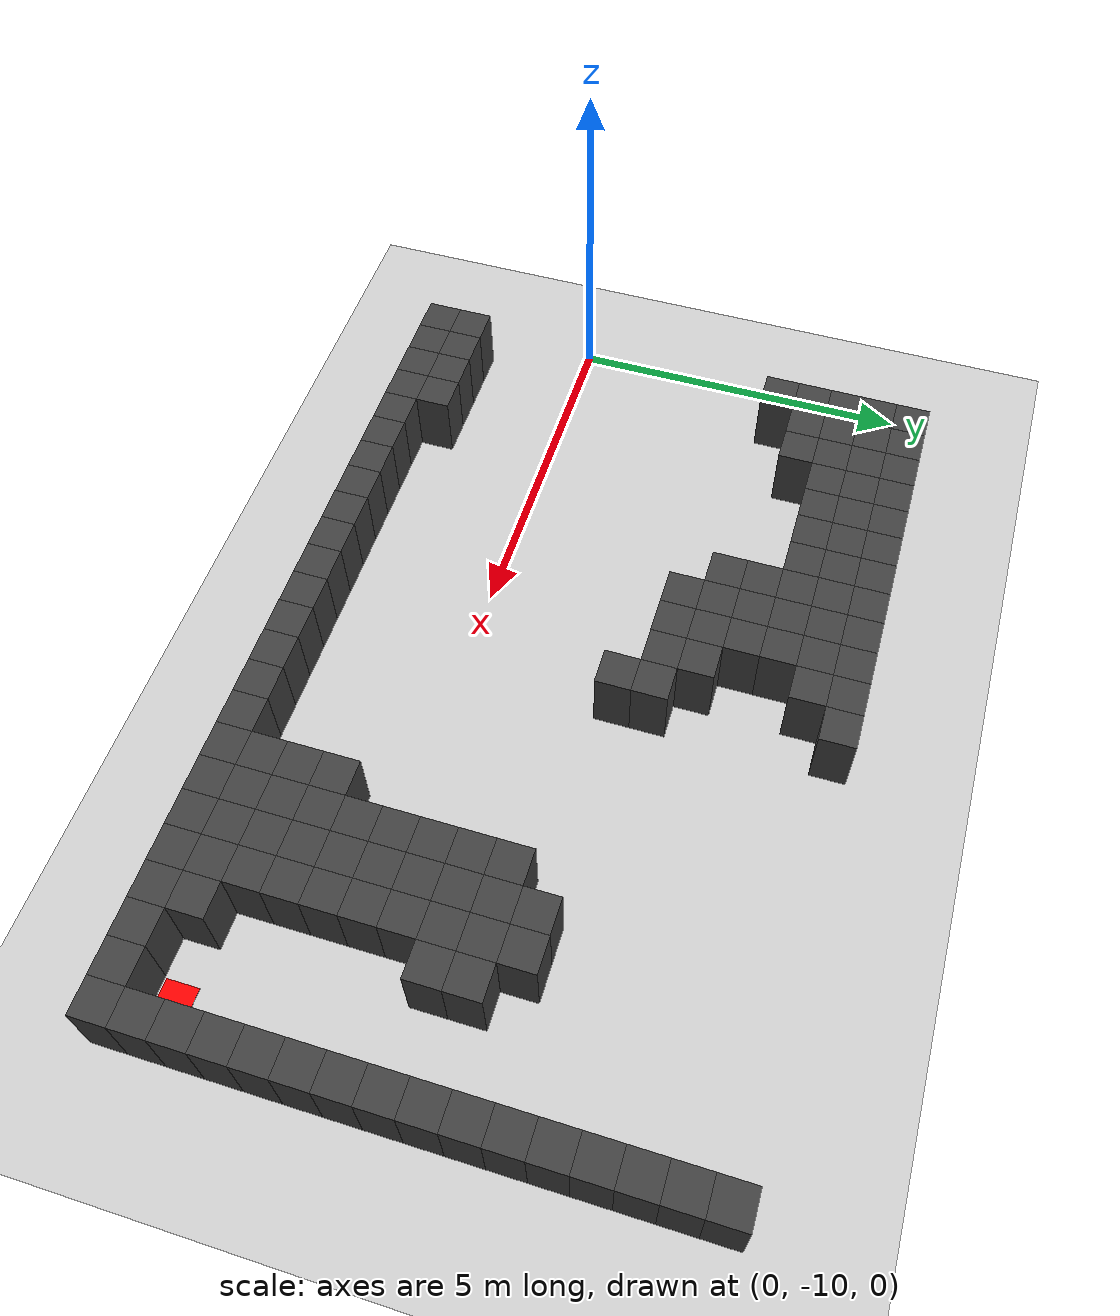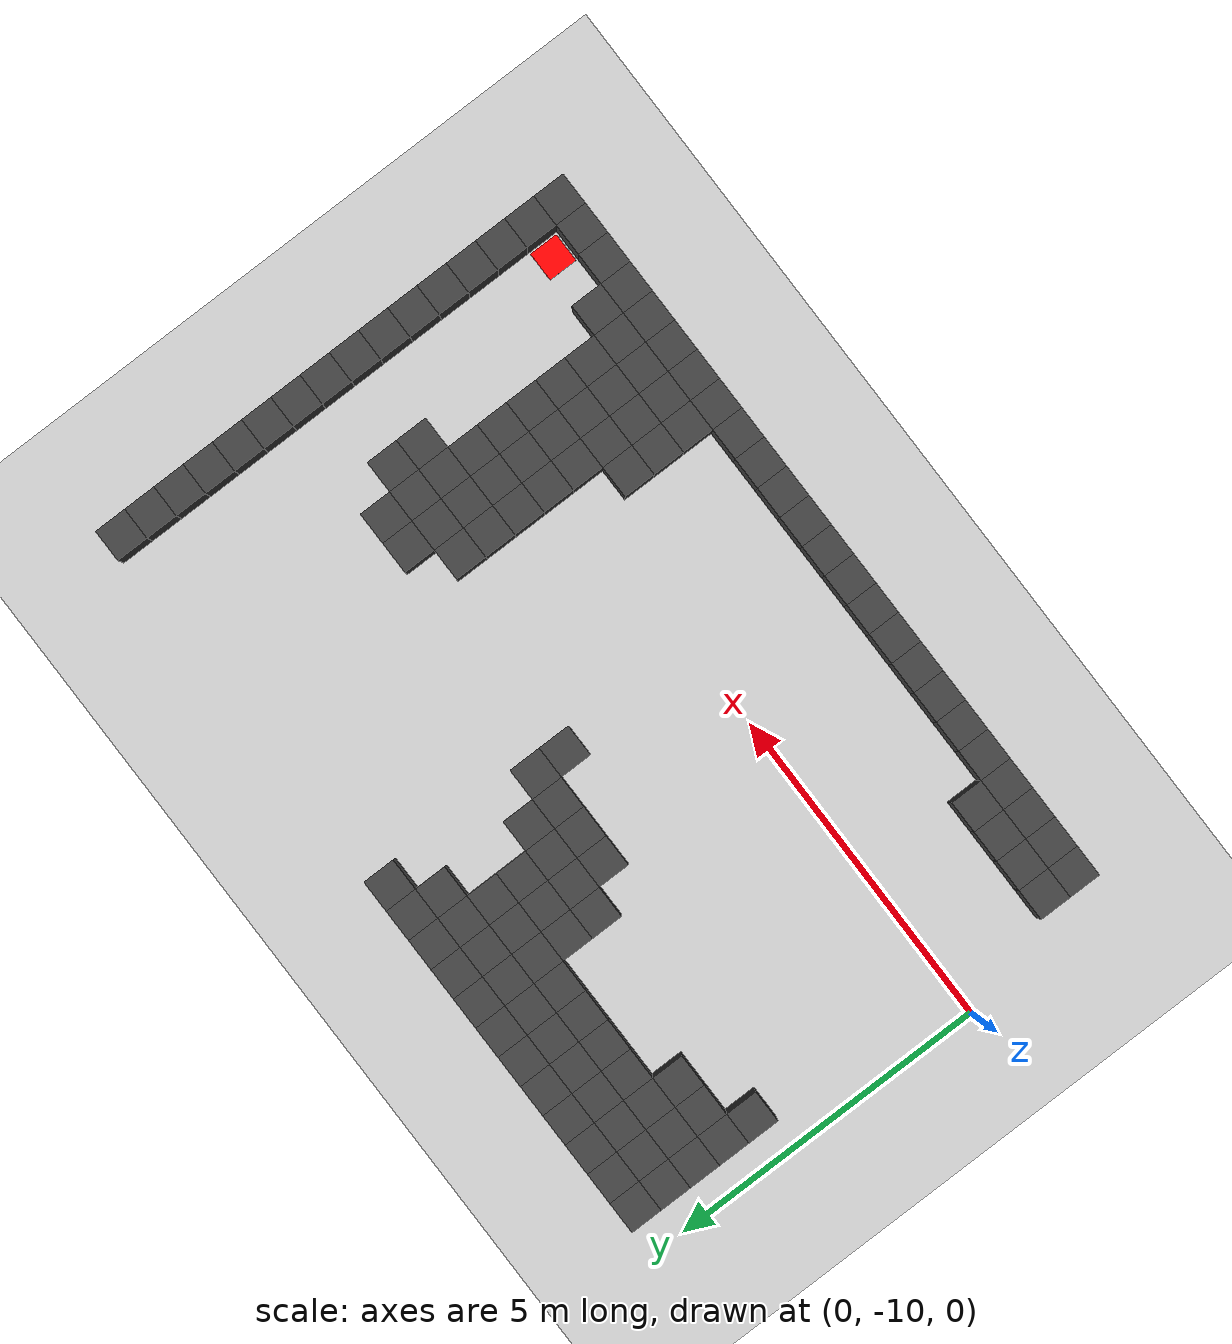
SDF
<sdf version="1.7">
 <world name="map_9687">
  <model name="ground_plane">
   <static>true</static>
   <link name="link">
    <collision name="collision">
     <geometry><plane><normal>0 0 1</normal><size>200 200</size></plane></geometry>
    </collision>
    <visual name="visual">
     <geometry><plane><normal>0 0 1</normal><size>200 200</size></plane></geometry>
     <material><ambient>0.8 0.8 0.8 1</ambient><diffuse>0.8 0.8 0.8 1</diffuse></material>
    </visual>
   </link>
  </model>
  <model name="maze_environment">
   <static>true</static>
   <link name="wall_696">
    <pose>0.750 -4.750 0.500 0 0 0</pose>
    <collision name="col"><geometry><box><size>0.5 0.5 1.0</size></box></geometry></collision>
    <visual name="vis">
     <geometry><box><size>0.5 0.5 1.0</size></box></geometry>
     <material><ambient>0.15 0.15 0.15 1</ambient><diffuse>0.25 0.25 0.25 1</diffuse></material>
    </visual>
   </link>
   <link name="wall_697">
    <pose>1.250 -4.750 0.500 0 0 0</pose>
    <collision name="col"><geometry><box><size>0.5 0.5 1.0</size></box></geometry></collision>
    <visual name="vis">
     <geometry><box><size>0.5 0.5 1.0</size></box></geometry>
     <material><ambient>0.15 0.15 0.15 1</ambient><diffuse>0.25 0.25 0.25 1</diffuse></material>
    </visual>
   </link>
   <link name="wall_698">
    <pose>1.750 -4.750 0.500 0 0 0</pose>
    <collision name="col"><geometry><box><size>0.5 0.5 1.0</size></box></geometry></collision>
    <visual name="vis">
     <geometry><box><size>0.5 0.5 1.0</size></box></geometry>
     <material><ambient>0.15 0.15 0.15 1</ambient><diffuse>0.25 0.25 0.25 1</diffuse></material>
    </visual>
   </link>
   <link name="wall_699">
    <pose>2.250 -4.750 0.500 0 0 0</pose>
    <collision name="col"><geometry><box><size>0.5 0.5 1.0</size></box></geometry></collision>
    <visual name="vis">
     <geometry><box><size>0.5 0.5 1.0</size></box></geometry>
     <material><ambient>0.15 0.15 0.15 1</ambient><diffuse>0.25 0.25 0.25 1</diffuse></material>
    </visual>
   </link>
   <link name="wall_700">
    <pose>2.750 -4.750 0.500 0 0 0</pose>
    <collision name="col"><geometry><box><size>0.5 0.5 1.0</size></box></geometry></collision>
    <visual name="vis">
     <geometry><box><size>0.5 0.5 1.0</size></box></geometry>
     <material><ambient>0.15 0.15 0.15 1</ambient><diffuse>0.25 0.25 0.25 1</diffuse></material>
    </visual>
   </link>
   <link name="wall_701">
    <pose>3.250 -4.750 0.500 0 0 0</pose>
    <collision name="col"><geometry><box><size>0.5 0.5 1.0</size></box></geometry></collision>
    <visual name="vis">
     <geometry><box><size>0.5 0.5 1.0</size></box></geometry>
     <material><ambient>0.15 0.15 0.15 1</ambient><diffuse>0.25 0.25 0.25 1</diffuse></material>
    </visual>
   </link>
   <link name="wall_702">
    <pose>3.750 -4.750 0.500 0 0 0</pose>
    <collision name="col"><geometry><box><size>0.5 0.5 1.0</size></box></geometry></collision>
    <visual name="vis">
     <geometry><box><size>0.5 0.5 1.0</size></box></geometry>
     <material><ambient>0.15 0.15 0.15 1</ambient><diffuse>0.25 0.25 0.25 1</diffuse></material>
    </visual>
   </link>
   <link name="wall_703">
    <pose>4.250 -4.750 0.500 0 0 0</pose>
    <collision name="col"><geometry><box><size>0.5 0.5 1.0</size></box></geometry></collision>
    <visual name="vis">
     <geometry><box><size>0.5 0.5 1.0</size></box></geometry>
     <material><ambient>0.15 0.15 0.15 1</ambient><diffuse>0.25 0.25 0.25 1</diffuse></material>
    </visual>
   </link>
   <link name="wall_704">
    <pose>4.750 -4.750 0.500 0 0 0</pose>
    <collision name="col"><geometry><box><size>0.5 0.5 1.0</size></box></geometry></collision>
    <visual name="vis">
     <geometry><box><size>0.5 0.5 1.0</size></box></geometry>
     <material><ambient>0.15 0.15 0.15 1</ambient><diffuse>0.25 0.25 0.25 1</diffuse></material>
    </visual>
   </link>
   <link name="wall_705">
    <pose>5.250 -4.750 0.500 0 0 0</pose>
    <collision name="col"><geometry><box><size>0.5 0.5 1.0</size></box></geometry></collision>
    <visual name="vis">
     <geometry><box><size>0.5 0.5 1.0</size></box></geometry>
     <material><ambient>0.15 0.15 0.15 1</ambient><diffuse>0.25 0.25 0.25 1</diffuse></material>
    </visual>
   </link>
   <link name="wall_706">
    <pose>5.750 -4.750 0.500 0 0 0</pose>
    <collision name="col"><geometry><box><size>0.5 0.5 1.0</size></box></geometry></collision>
    <visual name="vis">
     <geometry><box><size>0.5 0.5 1.0</size></box></geometry>
     <material><ambient>0.15 0.15 0.15 1</ambient><diffuse>0.25 0.25 0.25 1</diffuse></material>
    </visual>
   </link>
   <link name="wall_707">
    <pose>6.250 -4.750 0.500 0 0 0</pose>
    <collision name="col"><geometry><box><size>0.5 0.5 1.0</size></box></geometry></collision>
    <visual name="vis">
     <geometry><box><size>0.5 0.5 1.0</size></box></geometry>
     <material><ambient>0.15 0.15 0.15 1</ambient><diffuse>0.25 0.25 0.25 1</diffuse></material>
    </visual>
   </link>
   <link name="wall_708">
    <pose>12.250 -4.750 0.500 0 0 0</pose>
    <collision name="col"><geometry><box><size>0.5 0.5 1.0</size></box></geometry></collision>
    <visual name="vis">
     <geometry><box><size>0.5 0.5 1.0</size></box></geometry>
     <material><ambient>0.15 0.15 0.15 1</ambient><diffuse>0.25 0.25 0.25 1</diffuse></material>
    </visual>
   </link>
   <link name="wall_718">
    <pose>0.750 -5.250 0.500 0 0 0</pose>
    <collision name="col"><geometry><box><size>0.5 0.5 1.0</size></box></geometry></collision>
    <visual name="vis">
     <geometry><box><size>0.5 0.5 1.0</size></box></geometry>
     <material><ambient>0.15 0.15 0.15 1</ambient><diffuse>0.25 0.25 0.25 1</diffuse></material>
    </visual>
   </link>
   <link name="wall_719">
    <pose>1.250 -5.250 0.500 0 0 0</pose>
    <collision name="col"><geometry><box><size>0.5 0.5 1.0</size></box></geometry></collision>
    <visual name="vis">
     <geometry><box><size>0.5 0.5 1.0</size></box></geometry>
     <material><ambient>0.15 0.15 0.15 1</ambient><diffuse>0.25 0.25 0.25 1</diffuse></material>
    </visual>
   </link>
   <link name="wall_720">
    <pose>1.750 -5.250 0.500 0 0 0</pose>
    <collision name="col"><geometry><box><size>0.5 0.5 1.0</size></box></geometry></collision>
    <visual name="vis">
     <geometry><box><size>0.5 0.5 1.0</size></box></geometry>
     <material><ambient>0.15 0.15 0.15 1</ambient><diffuse>0.25 0.25 0.25 1</diffuse></material>
    </visual>
   </link>
   <link name="wall_721">
    <pose>2.250 -5.250 0.500 0 0 0</pose>
    <collision name="col"><geometry><box><size>0.5 0.5 1.0</size></box></geometry></collision>
    <visual name="vis">
     <geometry><box><size>0.5 0.5 1.0</size></box></geometry>
     <material><ambient>0.15 0.15 0.15 1</ambient><diffuse>0.25 0.25 0.25 1</diffuse></material>
    </visual>
   </link>
   <link name="wall_722">
    <pose>2.750 -5.250 0.500 0 0 0</pose>
    <collision name="col"><geometry><box><size>0.5 0.5 1.0</size></box></geometry></collision>
    <visual name="vis">
     <geometry><box><size>0.5 0.5 1.0</size></box></geometry>
     <material><ambient>0.15 0.15 0.15 1</ambient><diffuse>0.25 0.25 0.25 1</diffuse></material>
    </visual>
   </link>
   <link name="wall_723">
    <pose>3.250 -5.250 0.500 0 0 0</pose>
    <collision name="col"><geometry><box><size>0.5 0.5 1.0</size></box></geometry></collision>
    <visual name="vis">
     <geometry><box><size>0.5 0.5 1.0</size></box></geometry>
     <material><ambient>0.15 0.15 0.15 1</ambient><diffuse>0.25 0.25 0.25 1</diffuse></material>
    </visual>
   </link>
   <link name="wall_724">
    <pose>3.750 -5.250 0.500 0 0 0</pose>
    <collision name="col"><geometry><box><size>0.5 0.5 1.0</size></box></geometry></collision>
    <visual name="vis">
     <geometry><box><size>0.5 0.5 1.0</size></box></geometry>
     <material><ambient>0.15 0.15 0.15 1</ambient><diffuse>0.25 0.25 0.25 1</diffuse></material>
    </visual>
   </link>
   <link name="wall_725">
    <pose>4.250 -5.250 0.500 0 0 0</pose>
    <collision name="col"><geometry><box><size>0.5 0.5 1.0</size></box></geometry></collision>
    <visual name="vis">
     <geometry><box><size>0.5 0.5 1.0</size></box></geometry>
     <material><ambient>0.15 0.15 0.15 1</ambient><diffuse>0.25 0.25 0.25 1</diffuse></material>
    </visual>
   </link>
   <link name="wall_726">
    <pose>4.750 -5.250 0.500 0 0 0</pose>
    <collision name="col"><geometry><box><size>0.5 0.5 1.0</size></box></geometry></collision>
    <visual name="vis">
     <geometry><box><size>0.5 0.5 1.0</size></box></geometry>
     <material><ambient>0.15 0.15 0.15 1</ambient><diffuse>0.25 0.25 0.25 1</diffuse></material>
    </visual>
   </link>
   <link name="wall_727">
    <pose>5.250 -5.250 0.500 0 0 0</pose>
    <collision name="col"><geometry><box><size>0.5 0.5 1.0</size></box></geometry></collision>
    <visual name="vis">
     <geometry><box><size>0.5 0.5 1.0</size></box></geometry>
     <material><ambient>0.15 0.15 0.15 1</ambient><diffuse>0.25 0.25 0.25 1</diffuse></material>
    </visual>
   </link>
   <link name="wall_728">
    <pose>5.750 -5.250 0.500 0 0 0</pose>
    <collision name="col"><geometry><box><size>0.5 0.5 1.0</size></box></geometry></collision>
    <visual name="vis">
     <geometry><box><size>0.5 0.5 1.0</size></box></geometry>
     <material><ambient>0.15 0.15 0.15 1</ambient><diffuse>0.25 0.25 0.25 1</diffuse></material>
    </visual>
   </link>
   <link name="wall_729">
    <pose>12.250 -5.250 0.500 0 0 0</pose>
    <collision name="col"><geometry><box><size>0.5 0.5 1.0</size></box></geometry></collision>
    <visual name="vis">
     <geometry><box><size>0.5 0.5 1.0</size></box></geometry>
     <material><ambient>0.15 0.15 0.15 1</ambient><diffuse>0.25 0.25 0.25 1</diffuse></material>
    </visual>
   </link>
   <link name="wall_737">
    <pose>0.750 -5.750 0.500 0 0 0</pose>
    <collision name="col"><geometry><box><size>0.5 0.5 1.0</size></box></geometry></collision>
    <visual name="vis">
     <geometry><box><size>0.5 0.5 1.0</size></box></geometry>
     <material><ambient>0.15 0.15 0.15 1</ambient><diffuse>0.25 0.25 0.25 1</diffuse></material>
    </visual>
   </link>
   <link name="wall_738">
    <pose>1.250 -5.750 0.500 0 0 0</pose>
    <collision name="col"><geometry><box><size>0.5 0.5 1.0</size></box></geometry></collision>
    <visual name="vis">
     <geometry><box><size>0.5 0.5 1.0</size></box></geometry>
     <material><ambient>0.15 0.15 0.15 1</ambient><diffuse>0.25 0.25 0.25 1</diffuse></material>
    </visual>
   </link>
   <link name="wall_739">
    <pose>1.750 -5.750 0.500 0 0 0</pose>
    <collision name="col"><geometry><box><size>0.5 0.5 1.0</size></box></geometry></collision>
    <visual name="vis">
     <geometry><box><size>0.5 0.5 1.0</size></box></geometry>
     <material><ambient>0.15 0.15 0.15 1</ambient><diffuse>0.25 0.25 0.25 1</diffuse></material>
    </visual>
   </link>
   <link name="wall_740">
    <pose>2.250 -5.750 0.500 0 0 0</pose>
    <collision name="col"><geometry><box><size>0.5 0.5 1.0</size></box></geometry></collision>
    <visual name="vis">
     <geometry><box><size>0.5 0.5 1.0</size></box></geometry>
     <material><ambient>0.15 0.15 0.15 1</ambient><diffuse>0.25 0.25 0.25 1</diffuse></material>
    </visual>
   </link>
   <link name="wall_741">
    <pose>2.750 -5.750 0.500 0 0 0</pose>
    <collision name="col"><geometry><box><size>0.5 0.5 1.0</size></box></geometry></collision>
    <visual name="vis">
     <geometry><box><size>0.5 0.5 1.0</size></box></geometry>
     <material><ambient>0.15 0.15 0.15 1</ambient><diffuse>0.25 0.25 0.25 1</diffuse></material>
    </visual>
   </link>
   <link name="wall_742">
    <pose>3.250 -5.750 0.500 0 0 0</pose>
    <collision name="col"><geometry><box><size>0.5 0.5 1.0</size></box></geometry></collision>
    <visual name="vis">
     <geometry><box><size>0.5 0.5 1.0</size></box></geometry>
     <material><ambient>0.15 0.15 0.15 1</ambient><diffuse>0.25 0.25 0.25 1</diffuse></material>
    </visual>
   </link>
   <link name="wall_743">
    <pose>3.750 -5.750 0.500 0 0 0</pose>
    <collision name="col"><geometry><box><size>0.5 0.5 1.0</size></box></geometry></collision>
    <visual name="vis">
     <geometry><box><size>0.5 0.5 1.0</size></box></geometry>
     <material><ambient>0.15 0.15 0.15 1</ambient><diffuse>0.25 0.25 0.25 1</diffuse></material>
    </visual>
   </link>
   <link name="wall_744">
    <pose>4.250 -5.750 0.500 0 0 0</pose>
    <collision name="col"><geometry><box><size>0.5 0.5 1.0</size></box></geometry></collision>
    <visual name="vis">
     <geometry><box><size>0.5 0.5 1.0</size></box></geometry>
     <material><ambient>0.15 0.15 0.15 1</ambient><diffuse>0.25 0.25 0.25 1</diffuse></material>
    </visual>
   </link>
   <link name="wall_745">
    <pose>4.750 -5.750 0.500 0 0 0</pose>
    <collision name="col"><geometry><box><size>0.5 0.5 1.0</size></box></geometry></collision>
    <visual name="vis">
     <geometry><box><size>0.5 0.5 1.0</size></box></geometry>
     <material><ambient>0.15 0.15 0.15 1</ambient><diffuse>0.25 0.25 0.25 1</diffuse></material>
    </visual>
   </link>
   <link name="wall_746">
    <pose>5.250 -5.750 0.500 0 0 0</pose>
    <collision name="col"><geometry><box><size>0.5 0.5 1.0</size></box></geometry></collision>
    <visual name="vis">
     <geometry><box><size>0.5 0.5 1.0</size></box></geometry>
     <material><ambient>0.15 0.15 0.15 1</ambient><diffuse>0.25 0.25 0.25 1</diffuse></material>
    </visual>
   </link>
   <link name="wall_747">
    <pose>12.250 -5.750 0.500 0 0 0</pose>
    <collision name="col"><geometry><box><size>0.5 0.5 1.0</size></box></geometry></collision>
    <visual name="vis">
     <geometry><box><size>0.5 0.5 1.0</size></box></geometry>
     <material><ambient>0.15 0.15 0.15 1</ambient><diffuse>0.25 0.25 0.25 1</diffuse></material>
    </visual>
   </link>
   <link name="wall_754">
    <pose>0.750 -6.250 0.500 0 0 0</pose>
    <collision name="col"><geometry><box><size>0.5 0.5 1.0</size></box></geometry></collision>
    <visual name="vis">
     <geometry><box><size>0.5 0.5 1.0</size></box></geometry>
     <material><ambient>0.15 0.15 0.15 1</ambient><diffuse>0.25 0.25 0.25 1</diffuse></material>
    </visual>
   </link>
   <link name="wall_755">
    <pose>1.250 -6.250 0.500 0 0 0</pose>
    <collision name="col"><geometry><box><size>0.5 0.5 1.0</size></box></geometry></collision>
    <visual name="vis">
     <geometry><box><size>0.5 0.5 1.0</size></box></geometry>
     <material><ambient>0.15 0.15 0.15 1</ambient><diffuse>0.25 0.25 0.25 1</diffuse></material>
    </visual>
   </link>
   <link name="wall_756">
    <pose>1.750 -6.250 0.500 0 0 0</pose>
    <collision name="col"><geometry><box><size>0.5 0.5 1.0</size></box></geometry></collision>
    <visual name="vis">
     <geometry><box><size>0.5 0.5 1.0</size></box></geometry>
     <material><ambient>0.15 0.15 0.15 1</ambient><diffuse>0.25 0.25 0.25 1</diffuse></material>
    </visual>
   </link>
   <link name="wall_757">
    <pose>4.250 -6.250 0.500 0 0 0</pose>
    <collision name="col"><geometry><box><size>0.5 0.5 1.0</size></box></geometry></collision>
    <visual name="vis">
     <geometry><box><size>0.5 0.5 1.0</size></box></geometry>
     <material><ambient>0.15 0.15 0.15 1</ambient><diffuse>0.25 0.25 0.25 1</diffuse></material>
    </visual>
   </link>
   <link name="wall_758">
    <pose>4.750 -6.250 0.500 0 0 0</pose>
    <collision name="col"><geometry><box><size>0.5 0.5 1.0</size></box></geometry></collision>
    <visual name="vis">
     <geometry><box><size>0.5 0.5 1.0</size></box></geometry>
     <material><ambient>0.15 0.15 0.15 1</ambient><diffuse>0.25 0.25 0.25 1</diffuse></material>
    </visual>
   </link>
   <link name="wall_759">
    <pose>5.250 -6.250 0.500 0 0 0</pose>
    <collision name="col"><geometry><box><size>0.5 0.5 1.0</size></box></geometry></collision>
    <visual name="vis">
     <geometry><box><size>0.5 0.5 1.0</size></box></geometry>
     <material><ambient>0.15 0.15 0.15 1</ambient><diffuse>0.25 0.25 0.25 1</diffuse></material>
    </visual>
   </link>
   <link name="wall_760">
    <pose>12.250 -6.250 0.500 0 0 0</pose>
    <collision name="col"><geometry><box><size>0.5 0.5 1.0</size></box></geometry></collision>
    <visual name="vis">
     <geometry><box><size>0.5 0.5 1.0</size></box></geometry>
     <material><ambient>0.15 0.15 0.15 1</ambient><diffuse>0.25 0.25 0.25 1</diffuse></material>
    </visual>
   </link>
   <link name="wall_769">
    <pose>0.750 -6.750 0.500 0 0 0</pose>
    <collision name="col"><geometry><box><size>0.5 0.5 1.0</size></box></geometry></collision>
    <visual name="vis">
     <geometry><box><size>0.5 0.5 1.0</size></box></geometry>
     <material><ambient>0.15 0.15 0.15 1</ambient><diffuse>0.25 0.25 0.25 1</diffuse></material>
    </visual>
   </link>
   <link name="wall_770">
    <pose>4.250 -6.750 0.500 0 0 0</pose>
    <collision name="col"><geometry><box><size>0.5 0.5 1.0</size></box></geometry></collision>
    <visual name="vis">
     <geometry><box><size>0.5 0.5 1.0</size></box></geometry>
     <material><ambient>0.15 0.15 0.15 1</ambient><diffuse>0.25 0.25 0.25 1</diffuse></material>
    </visual>
   </link>
   <link name="wall_771">
    <pose>4.750 -6.750 0.500 0 0 0</pose>
    <collision name="col"><geometry><box><size>0.5 0.5 1.0</size></box></geometry></collision>
    <visual name="vis">
     <geometry><box><size>0.5 0.5 1.0</size></box></geometry>
     <material><ambient>0.15 0.15 0.15 1</ambient><diffuse>0.25 0.25 0.25 1</diffuse></material>
    </visual>
   </link>
   <link name="wall_772">
    <pose>5.250 -6.750 0.500 0 0 0</pose>
    <collision name="col"><geometry><box><size>0.5 0.5 1.0</size></box></geometry></collision>
    <visual name="vis">
     <geometry><box><size>0.5 0.5 1.0</size></box></geometry>
     <material><ambient>0.15 0.15 0.15 1</ambient><diffuse>0.25 0.25 0.25 1</diffuse></material>
    </visual>
   </link>
   <link name="wall_773">
    <pose>5.750 -6.750 0.500 0 0 0</pose>
    <collision name="col"><geometry><box><size>0.5 0.5 1.0</size></box></geometry></collision>
    <visual name="vis">
     <geometry><box><size>0.5 0.5 1.0</size></box></geometry>
     <material><ambient>0.15 0.15 0.15 1</ambient><diffuse>0.25 0.25 0.25 1</diffuse></material>
    </visual>
   </link>
   <link name="wall_774">
    <pose>12.250 -6.750 0.500 0 0 0</pose>
    <collision name="col"><geometry><box><size>0.5 0.5 1.0</size></box></geometry></collision>
    <visual name="vis">
     <geometry><box><size>0.5 0.5 1.0</size></box></geometry>
     <material><ambient>0.15 0.15 0.15 1</ambient><diffuse>0.25 0.25 0.25 1</diffuse></material>
    </visual>
   </link>
   <link name="wall_785">
    <pose>4.750 -7.250 0.500 0 0 0</pose>
    <collision name="col"><geometry><box><size>0.5 0.5 1.0</size></box></geometry></collision>
    <visual name="vis">
     <geometry><box><size>0.5 0.5 1.0</size></box></geometry>
     <material><ambient>0.15 0.15 0.15 1</ambient><diffuse>0.25 0.25 0.25 1</diffuse></material>
    </visual>
   </link>
   <link name="wall_786">
    <pose>5.250 -7.250 0.500 0 0 0</pose>
    <collision name="col"><geometry><box><size>0.5 0.5 1.0</size></box></geometry></collision>
    <visual name="vis">
     <geometry><box><size>0.5 0.5 1.0</size></box></geometry>
     <material><ambient>0.15 0.15 0.15 1</ambient><diffuse>0.25 0.25 0.25 1</diffuse></material>
    </visual>
   </link>
   <link name="wall_787">
    <pose>5.750 -7.250 0.500 0 0 0</pose>
    <collision name="col"><geometry><box><size>0.5 0.5 1.0</size></box></geometry></collision>
    <visual name="vis">
     <geometry><box><size>0.5 0.5 1.0</size></box></geometry>
     <material><ambient>0.15 0.15 0.15 1</ambient><diffuse>0.25 0.25 0.25 1</diffuse></material>
    </visual>
   </link>
   <link name="wall_788">
    <pose>6.250 -7.250 0.500 0 0 0</pose>
    <collision name="col"><geometry><box><size>0.5 0.5 1.0</size></box></geometry></collision>
    <visual name="vis">
     <geometry><box><size>0.5 0.5 1.0</size></box></geometry>
     <material><ambient>0.15 0.15 0.15 1</ambient><diffuse>0.25 0.25 0.25 1</diffuse></material>
    </visual>
   </link>
   <link name="wall_789">
    <pose>12.250 -7.250 0.500 0 0 0</pose>
    <collision name="col"><geometry><box><size>0.5 0.5 1.0</size></box></geometry></collision>
    <visual name="vis">
     <geometry><box><size>0.5 0.5 1.0</size></box></geometry>
     <material><ambient>0.15 0.15 0.15 1</ambient><diffuse>0.25 0.25 0.25 1</diffuse></material>
    </visual>
   </link>
   <link name="wall_803">
    <pose>6.250 -7.750 0.500 0 0 0</pose>
    <collision name="col"><geometry><box><size>0.5 0.5 1.0</size></box></geometry></collision>
    <visual name="vis">
     <geometry><box><size>0.5 0.5 1.0</size></box></geometry>
     <material><ambient>0.15 0.15 0.15 1</ambient><diffuse>0.25 0.25 0.25 1</diffuse></material>
    </visual>
   </link>
   <link name="wall_804">
    <pose>9.750 -7.750 0.500 0 0 0</pose>
    <collision name="col"><geometry><box><size>0.5 0.5 1.0</size></box></geometry></collision>
    <visual name="vis">
     <geometry><box><size>0.5 0.5 1.0</size></box></geometry>
     <material><ambient>0.15 0.15 0.15 1</ambient><diffuse>0.25 0.25 0.25 1</diffuse></material>
    </visual>
   </link>
   <link name="wall_805">
    <pose>10.250 -7.750 0.500 0 0 0</pose>
    <collision name="col"><geometry><box><size>0.5 0.5 1.0</size></box></geometry></collision>
    <visual name="vis">
     <geometry><box><size>0.5 0.5 1.0</size></box></geometry>
     <material><ambient>0.15 0.15 0.15 1</ambient><diffuse>0.25 0.25 0.25 1</diffuse></material>
    </visual>
   </link>
   <link name="wall_806">
    <pose>12.250 -7.750 0.500 0 0 0</pose>
    <collision name="col"><geometry><box><size>0.5 0.5 1.0</size></box></geometry></collision>
    <visual name="vis">
     <geometry><box><size>0.5 0.5 1.0</size></box></geometry>
     <material><ambient>0.15 0.15 0.15 1</ambient><diffuse>0.25 0.25 0.25 1</diffuse></material>
    </visual>
   </link>
   <link name="wall_821">
    <pose>9.250 -8.250 0.500 0 0 0</pose>
    <collision name="col"><geometry><box><size>0.5 0.5 1.0</size></box></geometry></collision>
    <visual name="vis">
     <geometry><box><size>0.5 0.5 1.0</size></box></geometry>
     <material><ambient>0.15 0.15 0.15 1</ambient><diffuse>0.25 0.25 0.25 1</diffuse></material>
    </visual>
   </link>
   <link name="wall_822">
    <pose>9.750 -8.250 0.500 0 0 0</pose>
    <collision name="col"><geometry><box><size>0.5 0.5 1.0</size></box></geometry></collision>
    <visual name="vis">
     <geometry><box><size>0.5 0.5 1.0</size></box></geometry>
     <material><ambient>0.15 0.15 0.15 1</ambient><diffuse>0.25 0.25 0.25 1</diffuse></material>
    </visual>
   </link>
   <link name="wall_823">
    <pose>10.250 -8.250 0.500 0 0 0</pose>
    <collision name="col"><geometry><box><size>0.5 0.5 1.0</size></box></geometry></collision>
    <visual name="vis">
     <geometry><box><size>0.5 0.5 1.0</size></box></geometry>
     <material><ambient>0.15 0.15 0.15 1</ambient><diffuse>0.25 0.25 0.25 1</diffuse></material>
    </visual>
   </link>
   <link name="wall_824">
    <pose>10.750 -8.250 0.500 0 0 0</pose>
    <collision name="col"><geometry><box><size>0.5 0.5 1.0</size></box></geometry></collision>
    <visual name="vis">
     <geometry><box><size>0.5 0.5 1.0</size></box></geometry>
     <material><ambient>0.15 0.15 0.15 1</ambient><diffuse>0.25 0.25 0.25 1</diffuse></material>
    </visual>
   </link>
   <link name="wall_825">
    <pose>12.250 -8.250 0.500 0 0 0</pose>
    <collision name="col"><geometry><box><size>0.5 0.5 1.0</size></box></geometry></collision>
    <visual name="vis">
     <geometry><box><size>0.5 0.5 1.0</size></box></geometry>
     <material><ambient>0.15 0.15 0.15 1</ambient><diffuse>0.25 0.25 0.25 1</diffuse></material>
    </visual>
   </link>
   <link name="wall_839">
    <pose>9.250 -8.750 0.500 0 0 0</pose>
    <collision name="col"><geometry><box><size>0.5 0.5 1.0</size></box></geometry></collision>
    <visual name="vis">
     <geometry><box><size>0.5 0.5 1.0</size></box></geometry>
     <material><ambient>0.15 0.15 0.15 1</ambient><diffuse>0.25 0.25 0.25 1</diffuse></material>
    </visual>
   </link>
   <link name="wall_840">
    <pose>9.750 -8.750 0.500 0 0 0</pose>
    <collision name="col"><geometry><box><size>0.5 0.5 1.0</size></box></geometry></collision>
    <visual name="vis">
     <geometry><box><size>0.5 0.5 1.0</size></box></geometry>
     <material><ambient>0.15 0.15 0.15 1</ambient><diffuse>0.25 0.25 0.25 1</diffuse></material>
    </visual>
   </link>
   <link name="wall_841">
    <pose>10.250 -8.750 0.500 0 0 0</pose>
    <collision name="col"><geometry><box><size>0.5 0.5 1.0</size></box></geometry></collision>
    <visual name="vis">
     <geometry><box><size>0.5 0.5 1.0</size></box></geometry>
     <material><ambient>0.15 0.15 0.15 1</ambient><diffuse>0.25 0.25 0.25 1</diffuse></material>
    </visual>
   </link>
   <link name="wall_842">
    <pose>10.750 -8.750 0.500 0 0 0</pose>
    <collision name="col"><geometry><box><size>0.5 0.5 1.0</size></box></geometry></collision>
    <visual name="vis">
     <geometry><box><size>0.5 0.5 1.0</size></box></geometry>
     <material><ambient>0.15 0.15 0.15 1</ambient><diffuse>0.25 0.25 0.25 1</diffuse></material>
    </visual>
   </link>
   <link name="wall_843">
    <pose>12.250 -8.750 0.500 0 0 0</pose>
    <collision name="col"><geometry><box><size>0.5 0.5 1.0</size></box></geometry></collision>
    <visual name="vis">
     <geometry><box><size>0.5 0.5 1.0</size></box></geometry>
     <material><ambient>0.15 0.15 0.15 1</ambient><diffuse>0.25 0.25 0.25 1</diffuse></material>
    </visual>
   </link>
   <link name="wall_853">
    <pose>9.250 -9.250 0.500 0 0 0</pose>
    <collision name="col"><geometry><box><size>0.5 0.5 1.0</size></box></geometry></collision>
    <visual name="vis">
     <geometry><box><size>0.5 0.5 1.0</size></box></geometry>
     <material><ambient>0.15 0.15 0.15 1</ambient><diffuse>0.25 0.25 0.25 1</diffuse></material>
    </visual>
   </link>
   <link name="wall_854">
    <pose>9.750 -9.250 0.500 0 0 0</pose>
    <collision name="col"><geometry><box><size>0.5 0.5 1.0</size></box></geometry></collision>
    <visual name="vis">
     <geometry><box><size>0.5 0.5 1.0</size></box></geometry>
     <material><ambient>0.15 0.15 0.15 1</ambient><diffuse>0.25 0.25 0.25 1</diffuse></material>
    </visual>
   </link>
   <link name="wall_855">
    <pose>10.250 -9.250 0.500 0 0 0</pose>
    <collision name="col"><geometry><box><size>0.5 0.5 1.0</size></box></geometry></collision>
    <visual name="vis">
     <geometry><box><size>0.5 0.5 1.0</size></box></geometry>
     <material><ambient>0.15 0.15 0.15 1</ambient><diffuse>0.25 0.25 0.25 1</diffuse></material>
    </visual>
   </link>
   <link name="wall_856">
    <pose>12.250 -9.250 0.500 0 0 0</pose>
    <collision name="col"><geometry><box><size>0.5 0.5 1.0</size></box></geometry></collision>
    <visual name="vis">
     <geometry><box><size>0.5 0.5 1.0</size></box></geometry>
     <material><ambient>0.15 0.15 0.15 1</ambient><diffuse>0.25 0.25 0.25 1</diffuse></material>
    </visual>
   </link>
   <link name="wall_864">
    <pose>9.250 -9.750 0.500 0 0 0</pose>
    <collision name="col"><geometry><box><size>0.5 0.5 1.0</size></box></geometry></collision>
    <visual name="vis">
     <geometry><box><size>0.5 0.5 1.0</size></box></geometry>
     <material><ambient>0.15 0.15 0.15 1</ambient><diffuse>0.25 0.25 0.25 1</diffuse></material>
    </visual>
   </link>
   <link name="wall_865">
    <pose>9.750 -9.750 0.500 0 0 0</pose>
    <collision name="col"><geometry><box><size>0.5 0.5 1.0</size></box></geometry></collision>
    <visual name="vis">
     <geometry><box><size>0.5 0.5 1.0</size></box></geometry>
     <material><ambient>0.15 0.15 0.15 1</ambient><diffuse>0.25 0.25 0.25 1</diffuse></material>
    </visual>
   </link>
   <link name="wall_866">
    <pose>10.250 -9.750 0.500 0 0 0</pose>
    <collision name="col"><geometry><box><size>0.5 0.5 1.0</size></box></geometry></collision>
    <visual name="vis">
     <geometry><box><size>0.5 0.5 1.0</size></box></geometry>
     <material><ambient>0.15 0.15 0.15 1</ambient><diffuse>0.25 0.25 0.25 1</diffuse></material>
    </visual>
   </link>
   <link name="wall_867">
    <pose>12.250 -9.750 0.500 0 0 0</pose>
    <collision name="col"><geometry><box><size>0.5 0.5 1.0</size></box></geometry></collision>
    <visual name="vis">
     <geometry><box><size>0.5 0.5 1.0</size></box></geometry>
     <material><ambient>0.15 0.15 0.15 1</ambient><diffuse>0.25 0.25 0.25 1</diffuse></material>
    </visual>
   </link>
   <link name="wall_878">
    <pose>9.250 -10.250 0.500 0 0 0</pose>
    <collision name="col"><geometry><box><size>0.5 0.5 1.0</size></box></geometry></collision>
    <visual name="vis">
     <geometry><box><size>0.5 0.5 1.0</size></box></geometry>
     <material><ambient>0.15 0.15 0.15 1</ambient><diffuse>0.25 0.25 0.25 1</diffuse></material>
    </visual>
   </link>
   <link name="wall_879">
    <pose>9.750 -10.250 0.500 0 0 0</pose>
    <collision name="col"><geometry><box><size>0.5 0.5 1.0</size></box></geometry></collision>
    <visual name="vis">
     <geometry><box><size>0.5 0.5 1.0</size></box></geometry>
     <material><ambient>0.15 0.15 0.15 1</ambient><diffuse>0.25 0.25 0.25 1</diffuse></material>
    </visual>
   </link>
   <link name="wall_880">
    <pose>10.250 -10.250 0.500 0 0 0</pose>
    <collision name="col"><geometry><box><size>0.5 0.5 1.0</size></box></geometry></collision>
    <visual name="vis">
     <geometry><box><size>0.5 0.5 1.0</size></box></geometry>
     <material><ambient>0.15 0.15 0.15 1</ambient><diffuse>0.25 0.25 0.25 1</diffuse></material>
    </visual>
   </link>
   <link name="wall_881">
    <pose>12.250 -10.250 0.500 0 0 0</pose>
    <collision name="col"><geometry><box><size>0.5 0.5 1.0</size></box></geometry></collision>
    <visual name="vis">
     <geometry><box><size>0.5 0.5 1.0</size></box></geometry>
     <material><ambient>0.15 0.15 0.15 1</ambient><diffuse>0.25 0.25 0.25 1</diffuse></material>
    </visual>
   </link>
   <link name="wall_891">
    <pose>8.750 -10.750 0.500 0 0 0</pose>
    <collision name="col"><geometry><box><size>0.5 0.5 1.0</size></box></geometry></collision>
    <visual name="vis">
     <geometry><box><size>0.5 0.5 1.0</size></box></geometry>
     <material><ambient>0.15 0.15 0.15 1</ambient><diffuse>0.25 0.25 0.25 1</diffuse></material>
    </visual>
   </link>
   <link name="wall_892">
    <pose>9.250 -10.750 0.500 0 0 0</pose>
    <collision name="col"><geometry><box><size>0.5 0.5 1.0</size></box></geometry></collision>
    <visual name="vis">
     <geometry><box><size>0.5 0.5 1.0</size></box></geometry>
     <material><ambient>0.15 0.15 0.15 1</ambient><diffuse>0.25 0.25 0.25 1</diffuse></material>
    </visual>
   </link>
   <link name="wall_893">
    <pose>9.750 -10.750 0.500 0 0 0</pose>
    <collision name="col"><geometry><box><size>0.5 0.5 1.0</size></box></geometry></collision>
    <visual name="vis">
     <geometry><box><size>0.5 0.5 1.0</size></box></geometry>
     <material><ambient>0.15 0.15 0.15 1</ambient><diffuse>0.25 0.25 0.25 1</diffuse></material>
    </visual>
   </link>
   <link name="wall_894">
    <pose>10.250 -10.750 0.500 0 0 0</pose>
    <collision name="col"><geometry><box><size>0.5 0.5 1.0</size></box></geometry></collision>
    <visual name="vis">
     <geometry><box><size>0.5 0.5 1.0</size></box></geometry>
     <material><ambient>0.15 0.15 0.15 1</ambient><diffuse>0.25 0.25 0.25 1</diffuse></material>
    </visual>
   </link>
   <link name="wall_895">
    <pose>12.250 -10.750 0.500 0 0 0</pose>
    <collision name="col"><geometry><box><size>0.5 0.5 1.0</size></box></geometry></collision>
    <visual name="vis">
     <geometry><box><size>0.5 0.5 1.0</size></box></geometry>
     <material><ambient>0.15 0.15 0.15 1</ambient><diffuse>0.25 0.25 0.25 1</diffuse></material>
    </visual>
   </link>
   <link name="wall_910">
    <pose>8.750 -11.250 0.500 0 0 0</pose>
    <collision name="col"><geometry><box><size>0.5 0.5 1.0</size></box></geometry></collision>
    <visual name="vis">
     <geometry><box><size>0.5 0.5 1.0</size></box></geometry>
     <material><ambient>0.15 0.15 0.15 1</ambient><diffuse>0.25 0.25 0.25 1</diffuse></material>
    </visual>
   </link>
   <link name="wall_911">
    <pose>9.250 -11.250 0.500 0 0 0</pose>
    <collision name="col"><geometry><box><size>0.5 0.5 1.0</size></box></geometry></collision>
    <visual name="vis">
     <geometry><box><size>0.5 0.5 1.0</size></box></geometry>
     <material><ambient>0.15 0.15 0.15 1</ambient><diffuse>0.25 0.25 0.25 1</diffuse></material>
    </visual>
   </link>
   <link name="wall_912">
    <pose>9.750 -11.250 0.500 0 0 0</pose>
    <collision name="col"><geometry><box><size>0.5 0.5 1.0</size></box></geometry></collision>
    <visual name="vis">
     <geometry><box><size>0.5 0.5 1.0</size></box></geometry>
     <material><ambient>0.15 0.15 0.15 1</ambient><diffuse>0.25 0.25 0.25 1</diffuse></material>
    </visual>
   </link>
   <link name="wall_913">
    <pose>10.250 -11.250 0.500 0 0 0</pose>
    <collision name="col"><geometry><box><size>0.5 0.5 1.0</size></box></geometry></collision>
    <visual name="vis">
     <geometry><box><size>0.5 0.5 1.0</size></box></geometry>
     <material><ambient>0.15 0.15 0.15 1</ambient><diffuse>0.25 0.25 0.25 1</diffuse></material>
    </visual>
   </link>
   <link name="wall_914">
    <pose>12.250 -11.250 0.500 0 0 0</pose>
    <collision name="col"><geometry><box><size>0.5 0.5 1.0</size></box></geometry></collision>
    <visual name="vis">
     <geometry><box><size>0.5 0.5 1.0</size></box></geometry>
     <material><ambient>0.15 0.15 0.15 1</ambient><diffuse>0.25 0.25 0.25 1</diffuse></material>
    </visual>
   </link>
   <link name="wall_937">
    <pose>0.750 -11.750 0.500 0 0 0</pose>
    <collision name="col"><geometry><box><size>0.5 0.5 1.0</size></box></geometry></collision>
    <visual name="vis">
     <geometry><box><size>0.5 0.5 1.0</size></box></geometry>
     <material><ambient>0.15 0.15 0.15 1</ambient><diffuse>0.25 0.25 0.25 1</diffuse></material>
    </visual>
   </link>
   <link name="wall_938">
    <pose>1.250 -11.750 0.500 0 0 0</pose>
    <collision name="col"><geometry><box><size>0.5 0.5 1.0</size></box></geometry></collision>
    <visual name="vis">
     <geometry><box><size>0.5 0.5 1.0</size></box></geometry>
     <material><ambient>0.15 0.15 0.15 1</ambient><diffuse>0.25 0.25 0.25 1</diffuse></material>
    </visual>
   </link>
   <link name="wall_939">
    <pose>1.750 -11.750 0.500 0 0 0</pose>
    <collision name="col"><geometry><box><size>0.5 0.5 1.0</size></box></geometry></collision>
    <visual name="vis">
     <geometry><box><size>0.5 0.5 1.0</size></box></geometry>
     <material><ambient>0.15 0.15 0.15 1</ambient><diffuse>0.25 0.25 0.25 1</diffuse></material>
    </visual>
   </link>
   <link name="wall_940">
    <pose>2.250 -11.750 0.500 0 0 0</pose>
    <collision name="col"><geometry><box><size>0.5 0.5 1.0</size></box></geometry></collision>
    <visual name="vis">
     <geometry><box><size>0.5 0.5 1.0</size></box></geometry>
     <material><ambient>0.15 0.15 0.15 1</ambient><diffuse>0.25 0.25 0.25 1</diffuse></material>
    </visual>
   </link>
   <link name="wall_941">
    <pose>8.750 -11.750 0.500 0 0 0</pose>
    <collision name="col"><geometry><box><size>0.5 0.5 1.0</size></box></geometry></collision>
    <visual name="vis">
     <geometry><box><size>0.5 0.5 1.0</size></box></geometry>
     <material><ambient>0.15 0.15 0.15 1</ambient><diffuse>0.25 0.25 0.25 1</diffuse></material>
    </visual>
   </link>
   <link name="wall_942">
    <pose>9.250 -11.750 0.500 0 0 0</pose>
    <collision name="col"><geometry><box><size>0.5 0.5 1.0</size></box></geometry></collision>
    <visual name="vis">
     <geometry><box><size>0.5 0.5 1.0</size></box></geometry>
     <material><ambient>0.15 0.15 0.15 1</ambient><diffuse>0.25 0.25 0.25 1</diffuse></material>
    </visual>
   </link>
   <link name="wall_943">
    <pose>9.750 -11.750 0.500 0 0 0</pose>
    <collision name="col"><geometry><box><size>0.5 0.5 1.0</size></box></geometry></collision>
    <visual name="vis">
     <geometry><box><size>0.5 0.5 1.0</size></box></geometry>
     <material><ambient>0.15 0.15 0.15 1</ambient><diffuse>0.25 0.25 0.25 1</diffuse></material>
    </visual>
   </link>
   <link name="wall_944">
    <pose>10.250 -11.750 0.500 0 0 0</pose>
    <collision name="col"><geometry><box><size>0.5 0.5 1.0</size></box></geometry></collision>
    <visual name="vis">
     <geometry><box><size>0.5 0.5 1.0</size></box></geometry>
     <material><ambient>0.15 0.15 0.15 1</ambient><diffuse>0.25 0.25 0.25 1</diffuse></material>
    </visual>
   </link>
   <link name="wall_945">
    <pose>10.750 -11.750 0.500 0 0 0</pose>
    <collision name="col"><geometry><box><size>0.5 0.5 1.0</size></box></geometry></collision>
    <visual name="vis">
     <geometry><box><size>0.5 0.5 1.0</size></box></geometry>
     <material><ambient>0.15 0.15 0.15 1</ambient><diffuse>0.25 0.25 0.25 1</diffuse></material>
    </visual>
   </link>
   <link name="wall_946">
    <pose>12.250 -11.750 0.500 0 0 0</pose>
    <collision name="col"><geometry><box><size>0.5 0.5 1.0</size></box></geometry></collision>
    <visual name="vis">
     <geometry><box><size>0.5 0.5 1.0</size></box></geometry>
     <material><ambient>0.15 0.15 0.15 1</ambient><diffuse>0.25 0.25 0.25 1</diffuse></material>
    </visual>
   </link>
   <link name="wall_973">
    <pose>0.750 -12.250 0.500 0 0 0</pose>
    <collision name="col"><geometry><box><size>0.5 0.5 1.0</size></box></geometry></collision>
    <visual name="vis">
     <geometry><box><size>0.5 0.5 1.0</size></box></geometry>
     <material><ambient>0.15 0.15 0.15 1</ambient><diffuse>0.25 0.25 0.25 1</diffuse></material>
    </visual>
   </link>
   <link name="wall_974">
    <pose>1.250 -12.250 0.500 0 0 0</pose>
    <collision name="col"><geometry><box><size>0.5 0.5 1.0</size></box></geometry></collision>
    <visual name="vis">
     <geometry><box><size>0.5 0.5 1.0</size></box></geometry>
     <material><ambient>0.15 0.15 0.15 1</ambient><diffuse>0.25 0.25 0.25 1</diffuse></material>
    </visual>
   </link>
   <link name="wall_975">
    <pose>1.750 -12.250 0.500 0 0 0</pose>
    <collision name="col"><geometry><box><size>0.5 0.5 1.0</size></box></geometry></collision>
    <visual name="vis">
     <geometry><box><size>0.5 0.5 1.0</size></box></geometry>
     <material><ambient>0.15 0.15 0.15 1</ambient><diffuse>0.25 0.25 0.25 1</diffuse></material>
    </visual>
   </link>
   <link name="wall_976">
    <pose>2.250 -12.250 0.500 0 0 0</pose>
    <collision name="col"><geometry><box><size>0.5 0.5 1.0</size></box></geometry></collision>
    <visual name="vis">
     <geometry><box><size>0.5 0.5 1.0</size></box></geometry>
     <material><ambient>0.15 0.15 0.15 1</ambient><diffuse>0.25 0.25 0.25 1</diffuse></material>
    </visual>
   </link>
   <link name="wall_977">
    <pose>2.750 -12.250 0.500 0 0 0</pose>
    <collision name="col"><geometry><box><size>0.5 0.5 1.0</size></box></geometry></collision>
    <visual name="vis">
     <geometry><box><size>0.5 0.5 1.0</size></box></geometry>
     <material><ambient>0.15 0.15 0.15 1</ambient><diffuse>0.25 0.25 0.25 1</diffuse></material>
    </visual>
   </link>
   <link name="wall_978">
    <pose>3.250 -12.250 0.500 0 0 0</pose>
    <collision name="col"><geometry><box><size>0.5 0.5 1.0</size></box></geometry></collision>
    <visual name="vis">
     <geometry><box><size>0.5 0.5 1.0</size></box></geometry>
     <material><ambient>0.15 0.15 0.15 1</ambient><diffuse>0.25 0.25 0.25 1</diffuse></material>
    </visual>
   </link>
   <link name="wall_979">
    <pose>3.750 -12.250 0.500 0 0 0</pose>
    <collision name="col"><geometry><box><size>0.5 0.5 1.0</size></box></geometry></collision>
    <visual name="vis">
     <geometry><box><size>0.5 0.5 1.0</size></box></geometry>
     <material><ambient>0.15 0.15 0.15 1</ambient><diffuse>0.25 0.25 0.25 1</diffuse></material>
    </visual>
   </link>
   <link name="wall_980">
    <pose>4.250 -12.250 0.500 0 0 0</pose>
    <collision name="col"><geometry><box><size>0.5 0.5 1.0</size></box></geometry></collision>
    <visual name="vis">
     <geometry><box><size>0.5 0.5 1.0</size></box></geometry>
     <material><ambient>0.15 0.15 0.15 1</ambient><diffuse>0.25 0.25 0.25 1</diffuse></material>
    </visual>
   </link>
   <link name="wall_981">
    <pose>4.750 -12.250 0.500 0 0 0</pose>
    <collision name="col"><geometry><box><size>0.5 0.5 1.0</size></box></geometry></collision>
    <visual name="vis">
     <geometry><box><size>0.5 0.5 1.0</size></box></geometry>
     <material><ambient>0.15 0.15 0.15 1</ambient><diffuse>0.25 0.25 0.25 1</diffuse></material>
    </visual>
   </link>
   <link name="wall_982">
    <pose>5.250 -12.250 0.500 0 0 0</pose>
    <collision name="col"><geometry><box><size>0.5 0.5 1.0</size></box></geometry></collision>
    <visual name="vis">
     <geometry><box><size>0.5 0.5 1.0</size></box></geometry>
     <material><ambient>0.15 0.15 0.15 1</ambient><diffuse>0.25 0.25 0.25 1</diffuse></material>
    </visual>
   </link>
   <link name="wall_983">
    <pose>5.750 -12.250 0.500 0 0 0</pose>
    <collision name="col"><geometry><box><size>0.5 0.5 1.0</size></box></geometry></collision>
    <visual name="vis">
     <geometry><box><size>0.5 0.5 1.0</size></box></geometry>
     <material><ambient>0.15 0.15 0.15 1</ambient><diffuse>0.25 0.25 0.25 1</diffuse></material>
    </visual>
   </link>
   <link name="wall_984">
    <pose>6.250 -12.250 0.500 0 0 0</pose>
    <collision name="col"><geometry><box><size>0.5 0.5 1.0</size></box></geometry></collision>
    <visual name="vis">
     <geometry><box><size>0.5 0.5 1.0</size></box></geometry>
     <material><ambient>0.15 0.15 0.15 1</ambient><diffuse>0.25 0.25 0.25 1</diffuse></material>
    </visual>
   </link>
   <link name="wall_985">
    <pose>6.750 -12.250 0.500 0 0 0</pose>
    <collision name="col"><geometry><box><size>0.5 0.5 1.0</size></box></geometry></collision>
    <visual name="vis">
     <geometry><box><size>0.5 0.5 1.0</size></box></geometry>
     <material><ambient>0.15 0.15 0.15 1</ambient><diffuse>0.25 0.25 0.25 1</diffuse></material>
    </visual>
   </link>
   <link name="wall_986">
    <pose>7.250 -12.250 0.500 0 0 0</pose>
    <collision name="col"><geometry><box><size>0.5 0.5 1.0</size></box></geometry></collision>
    <visual name="vis">
     <geometry><box><size>0.5 0.5 1.0</size></box></geometry>
     <material><ambient>0.15 0.15 0.15 1</ambient><diffuse>0.25 0.25 0.25 1</diffuse></material>
    </visual>
   </link>
   <link name="wall_987">
    <pose>7.750 -12.250 0.500 0 0 0</pose>
    <collision name="col"><geometry><box><size>0.5 0.5 1.0</size></box></geometry></collision>
    <visual name="vis">
     <geometry><box><size>0.5 0.5 1.0</size></box></geometry>
     <material><ambient>0.15 0.15 0.15 1</ambient><diffuse>0.25 0.25 0.25 1</diffuse></material>
    </visual>
   </link>
   <link name="wall_988">
    <pose>8.250 -12.250 0.500 0 0 0</pose>
    <collision name="col"><geometry><box><size>0.5 0.5 1.0</size></box></geometry></collision>
    <visual name="vis">
     <geometry><box><size>0.5 0.5 1.0</size></box></geometry>
     <material><ambient>0.15 0.15 0.15 1</ambient><diffuse>0.25 0.25 0.25 1</diffuse></material>
    </visual>
   </link>
   <link name="wall_989">
    <pose>8.750 -12.250 0.500 0 0 0</pose>
    <collision name="col"><geometry><box><size>0.5 0.5 1.0</size></box></geometry></collision>
    <visual name="vis">
     <geometry><box><size>0.5 0.5 1.0</size></box></geometry>
     <material><ambient>0.15 0.15 0.15 1</ambient><diffuse>0.25 0.25 0.25 1</diffuse></material>
    </visual>
   </link>
   <link name="wall_990">
    <pose>9.250 -12.250 0.500 0 0 0</pose>
    <collision name="col"><geometry><box><size>0.5 0.5 1.0</size></box></geometry></collision>
    <visual name="vis">
     <geometry><box><size>0.5 0.5 1.0</size></box></geometry>
     <material><ambient>0.15 0.15 0.15 1</ambient><diffuse>0.25 0.25 0.25 1</diffuse></material>
    </visual>
   </link>
   <link name="wall_991">
    <pose>9.750 -12.250 0.500 0 0 0</pose>
    <collision name="col"><geometry><box><size>0.5 0.5 1.0</size></box></geometry></collision>
    <visual name="vis">
     <geometry><box><size>0.5 0.5 1.0</size></box></geometry>
     <material><ambient>0.15 0.15 0.15 1</ambient><diffuse>0.25 0.25 0.25 1</diffuse></material>
    </visual>
   </link>
   <link name="wall_992">
    <pose>10.250 -12.250 0.500 0 0 0</pose>
    <collision name="col"><geometry><box><size>0.5 0.5 1.0</size></box></geometry></collision>
    <visual name="vis">
     <geometry><box><size>0.5 0.5 1.0</size></box></geometry>
     <material><ambient>0.15 0.15 0.15 1</ambient><diffuse>0.25 0.25 0.25 1</diffuse></material>
    </visual>
   </link>
   <link name="wall_993">
    <pose>10.750 -12.250 0.500 0 0 0</pose>
    <collision name="col"><geometry><box><size>0.5 0.5 1.0</size></box></geometry></collision>
    <visual name="vis">
     <geometry><box><size>0.5 0.5 1.0</size></box></geometry>
     <material><ambient>0.15 0.15 0.15 1</ambient><diffuse>0.25 0.25 0.25 1</diffuse></material>
    </visual>
   </link>
   <link name="wall_994">
    <pose>11.250 -12.250 0.500 0 0 0</pose>
    <collision name="col"><geometry><box><size>0.5 0.5 1.0</size></box></geometry></collision>
    <visual name="vis">
     <geometry><box><size>0.5 0.5 1.0</size></box></geometry>
     <material><ambient>0.15 0.15 0.15 1</ambient><diffuse>0.25 0.25 0.25 1</diffuse></material>
    </visual>
   </link>
   <link name="wall_995">
    <pose>11.750 -12.250 0.500 0 0 0</pose>
    <collision name="col"><geometry><box><size>0.5 0.5 1.0</size></box></geometry></collision>
    <visual name="vis">
     <geometry><box><size>0.5 0.5 1.0</size></box></geometry>
     <material><ambient>0.15 0.15 0.15 1</ambient><diffuse>0.25 0.25 0.25 1</diffuse></material>
    </visual>
   </link>
   <link name="wall_996">
    <pose>12.250 -12.250 0.500 0 0 0</pose>
    <collision name="col"><geometry><box><size>0.5 0.5 1.0</size></box></geometry></collision>
    <visual name="vis">
     <geometry><box><size>0.5 0.5 1.0</size></box></geometry>
     <material><ambient>0.15 0.15 0.15 1</ambient><diffuse>0.25 0.25 0.25 1</diffuse></material>
    </visual>
   </link>
   <link name="goal_zone">
    <pose>11.750 -11.750 0.005 0 0 0</pose>
    <visual name="vis">
     <geometry><box><size>0.45 0.45 0.01</size></box></geometry>
     <material>
      <ambient>1.0 0.0 0.0 1</ambient>
      <diffuse>1.0 0.0 0.0 1</diffuse>
      <emissive>0.60 0.00 0.00 1</emissive>
     </material>
    </visual>
   </link>
  </model>
 </world>
</sdf>
